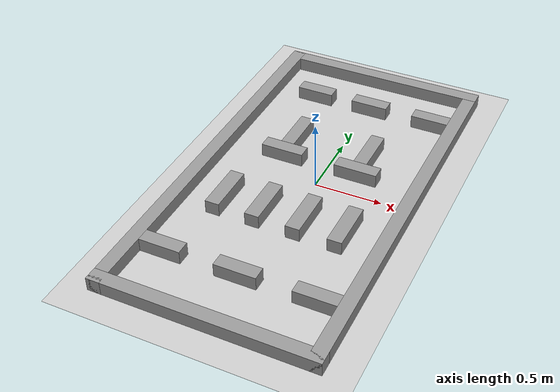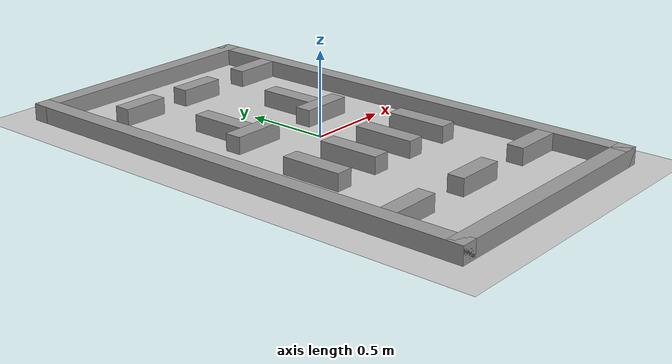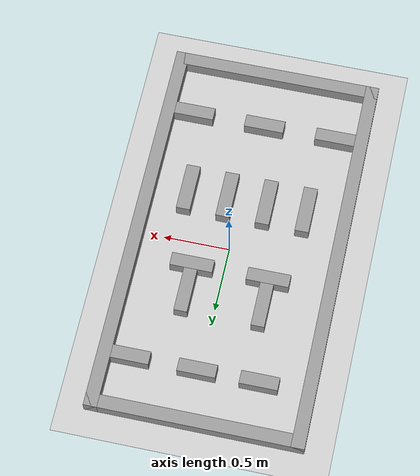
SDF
<?xml version='1.0' encoding='UTF-8'?>
<sdf version="1.7">
  <world name="default">
    <light name="sun" type="directional">
      <cast_shadows>1</cast_shadows>
      <pose>0 0 10 0 -0 0</pose>
      <diffuse>0.8 0.8 0.8 1</diffuse>
      <specular>0.2 0.2 0.2 1</specular>
      <attenuation>
        <range>1000</range>
        <constant>0.9</constant>
        <linear>0.01</linear>
        <quadratic>0.001</quadratic>
      </attenuation>
      <direction>-0.5 0.1 -0.9</direction>
      <spot>
        <inner_angle>0</inner_angle>
        <outer_angle>0</outer_angle>
        <falloff>0</falloff>
      </spot>
    </light>
    <model name="ground_plane">
      <static>1</static>
      <link name="link">
        <collision name="collision">
          <geometry>
            <plane>
              <normal>0 0 1</normal>
              <size>100 100</size>
            </plane>
          </geometry>
          <surface>
            <contact>
              <collide_bitmask>65535</collide_bitmask>
              <ode />
            </contact>
            <friction>
              <ode>
                <mu>100</mu>
                <mu2>50</mu2>
              </ode>
              <torsional>
                <ode />
              </torsional>
            </friction>
            <bounce />
          </surface>
          <max_contacts>10</max_contacts>
        </collision>
        <visual name="visual">
          <cast_shadows>0</cast_shadows>
          <geometry>
            <plane>
              <normal>0 0 1</normal>
              <size>100 100</size>
            </plane>
          </geometry>
          <material>
            <script>
              <uri>file://media/materials/scripts/gazebo.material</uri>
              <name>Gazebo/Grey</name>
            </script>
          </material>
        </visual>
        <self_collide>0</self_collide>
        <enable_wind>0</enable_wind>
        <kinematic>0</kinematic>
      </link>
    </model>
    <gravity>0 0 -9.8</gravity>
    <magnetic_field>6e-06 2.3e-05 -4.2e-05</magnetic_field>
    <atmosphere type="adiabatic" />
    <physics type="ode">
      <max_step_size>0.001</max_step_size>
      <real_time_factor>1</real_time_factor>
      <real_time_update_rate>1000</real_time_update_rate>
    </physics>
    <scene>
      <ambient>0.4 0.4 0.4 1</ambient>
      <background>0.7 0.7 0.7 1</background>
      <shadows>1</shadows>
    </scene>
    <wind />
    <spherical_coordinates>
      <surface_model>EARTH_WGS84</surface_model>
      <latitude_deg>0</latitude_deg>
      <longitude_deg>0</longitude_deg>
      <elevation>0</elevation>
      <heading_deg>0</heading_deg>
    </spherical_coordinates>
    <model name="maze">
      <pose>-0.05 -0.05 0 0 -0 0</pose>
      <link name="Wall_4">
        <collision name="Wall_4_Collision">
          <geometry>
            <box>
              <size>2.98 0.1 0.1</size>
            </box>
          </geometry>
          <pose>0 0 0.05 0 -0 0</pose>
          <max_contacts>10</max_contacts>
          <surface>
            <contact>
              <ode />
            </contact>
            <bounce />
            <friction>
              <torsional>
                <ode />
              </torsional>
              <ode />
            </friction>
          </surface>
        </collision>
        <visual name="Wall_4_Visual">
          <pose>0 0 0.05 0 -0 0</pose>
          <geometry>
            <box>
              <size>2.98 0.1 0.1</size>
            </box>
          </geometry>
          <material>
            <script>
              <uri>file://media/materials/scripts/gazebo.material</uri>
              <name>Gazebo/Grey</name>
            </script>
            <ambient>1 1 1 1</ambient>
          </material>
          <meta>
            <layer>0</layer>
          </meta>
        </visual>
        <pose>-0.75 -0 0 0 -0 -1.5708</pose>
        <self_collide>0</self_collide>
        <enable_wind>0</enable_wind>
        <kinematic>0</kinematic>
      </link>
      <link name="Wall_6">
        <collision name="Wall_6_Collision">
          <geometry>
            <box>
              <size>0.2821653333333333 0.1 0.1</size>
            </box>
          </geometry>
          <pose>0 0 0.05 0 -0 0</pose>
          <max_contacts>10</max_contacts>
          <surface>
            <contact>
              <ode />
            </contact>
            <bounce />
            <friction>
              <torsional>
                <ode />
              </torsional>
              <ode />
            </friction>
          </surface>
        </collision>
        <visual name="Wall_6_Visual">
          <pose>0 0 0.05 0 -0 0</pose>
          <geometry>
            <box>
              <size>0.2821653333333333 0.1 0.1</size>
            </box>
          </geometry>
          <material>
            <script>
              <uri>file://media/materials/scripts/gazebo.material</uri>
              <name>Gazebo/Grey</name>
            </script>
            <ambient>1 1 1 1</ambient>
          </material>
          <meta>
            <layer>0</layer>
          </meta>
        </visual>
        <pose>0.06870399999999999 1.05 0 0 -0 0</pose>
        <self_collide>0</self_collide>
        <enable_wind>0</enable_wind>
        <kinematic>0</kinematic>
      </link>
      <link name="Wall_5">
        <collision name="Wall_5_Collision">
          <geometry>
            <box>
              <size>0.2821653333333333 0.1 0.1</size>
            </box>
          </geometry>
          <pose>0 0 0.05 0 -0 0</pose>
          <max_contacts>10</max_contacts>
          <surface>
            <contact>
              <ode />
            </contact>
            <bounce />
            <friction>
              <torsional>
                <ode />
              </torsional>
              <ode />
            </friction>
          </surface>
        </collision>
        <visual name="Wall_5_Visual">
          <pose>0 0 0.05 0 -0 0</pose>
          <geometry>
            <box>
              <size>0.2821653333333333 0.1 0.1</size>
            </box>
          </geometry>
          <material>
            <script>
              <uri>file://media/materials/scripts/gazebo.material</uri>
              <name>Gazebo/Grey</name>
            </script>
            <ambient>1 1 1 1</ambient>
          </material>
          <meta>
            <layer>0</layer>
          </meta>
        </visual>
        <pose>0.5589173333333333 1.05 0 0 -0 0</pose>
        <self_collide>0</self_collide>
        <enable_wind>0</enable_wind>
        <kinematic>0</kinematic>
      </link>
      <link name="Wall_1">
        <collision name="Wall_1_Collision">
          <geometry>
            <box>
              <size>1.6 0.1 0.1</size>
            </box>
          </geometry>
          <pose>0 0 0.05 0 -0 0</pose>
          <max_contacts>10</max_contacts>
          <surface>
            <contact>
              <ode />
            </contact>
            <bounce />
            <friction>
              <torsional>
                <ode />
              </torsional>
              <ode />
            </friction>
          </surface>
        </collision>
        <visual name="Wall_1_Visual">
          <pose>0 0 0.05 0 -0 0</pose>
          <geometry>
            <box>
              <size>1.6 0.1 0.1</size>
            </box>
          </geometry>
          <material>
            <script>
              <uri>file://media/materials/scripts/gazebo.material</uri>
              <name>Gazebo/Grey</name>
            </script>
            <ambient>1 1 1 1</ambient>
          </material>
          <meta>
            <layer>0</layer>
          </meta>
        </visual>
        <pose>0 1.44 0 0 -0 0</pose>
        <self_collide>0</self_collide>
        <enable_wind>0</enable_wind>
        <kinematic>0</kinematic>
      </link>
      <link name="Wall_11">
        <collision name="Wall_11_Collision">
          <geometry>
            <box>
              <size>0.3199749999999999 0.1 0.1</size>
            </box>
          </geometry>
          <pose>0 0 0.05 0 -0 0</pose>
          <max_contacts>10</max_contacts>
          <surface>
            <contact>
              <ode />
            </contact>
            <bounce />
            <friction>
              <torsional>
                <ode />
              </torsional>
              <ode />
            </friction>
          </surface>
        </collision>
        <visual name="Wall_11_Visual">
          <pose>0 0 0.05 0 -0 0</pose>
          <geometry>
            <box>
              <size>0.3199749999999999 0.1 0.1</size>
            </box>
          </geometry>
          <material>
            <script>
              <uri>file://media/materials/scripts/gazebo.material</uri>
              <name>Gazebo/Grey</name>
            </script>
            <ambient>1 1 1 1</ambient>
          </material>
          <meta>
            <layer>0</layer>
          </meta>
        </visual>
        <pose>-0.28666249999999993 0.25 0 0 -0 0</pose>
        <self_collide>0</self_collide>
        <enable_wind>0</enable_wind>
        <kinematic>0</kinematic>
      </link>
      <link name="Wall_10">
        <collision name="Wall_10_Collision">
          <geometry>
            <box>
              <size>0.344949 0.1 0.1</size>
            </box>
          </geometry>
          <pose>0 0 0.05 0 -0 0</pose>
          <max_contacts>10</max_contacts>
          <surface>
            <contact>
              <ode />
            </contact>
            <bounce />
            <friction>
              <torsional>
                <ode />
              </torsional>
              <ode />
            </friction>
          </surface>
        </collision>
        <visual name="Wall_10_Visual">
          <pose>0 0 0.05 0 -0 0</pose>
          <geometry>
            <box>
              <size>0.344949 0.1 0.1</size>
            </box>
          </geometry>
          <material>
            <script>
              <uri>file://media/materials/scripts/gazebo.material</uri>
              <name>Gazebo/Grey</name>
            </script>
            <ambient>1 1 1 1</ambient>
          </material>
          <meta>
            <layer>0</layer>
          </meta>
        </visual>
        <pose>-0.28666249999999993 0.4724745 0 0 -0 1.5708</pose>
        <self_collide>0</self_collide>
        <enable_wind>0</enable_wind>
        <kinematic>0</kinematic>
      </link>
      <link name="Wall_9">
        <collision name="Wall_9_Collision">
          <geometry>
            <box>
              <size>0.3199749999999999 0.1 0.1</size>
            </box>
          </geometry>
          <pose>0 0 0.05 0 -0 0</pose>
          <max_contacts>10</max_contacts>
          <surface>
            <contact>
              <ode />
            </contact>
            <bounce />
            <friction>
              <torsional>
                <ode />
              </torsional>
              <ode />
            </friction>
          </surface>
        </collision>
        <visual name="Wall_9_Visual">
          <pose>0 0 0.05 0 -0 0</pose>
          <geometry>
            <box>
              <size>0.3199749999999999 0.1 0.1</size>
            </box>
          </geometry>
          <material>
            <script>
              <uri>file://media/materials/scripts/gazebo.material</uri>
              <name>Gazebo/Grey</name>
            </script>
            <ambient>1 1 1 1</ambient>
          </material>
          <meta>
            <layer>0</layer>
          </meta>
        </visual>
        <pose>0.28666249999999993 0.25 0 0 -0 0</pose>
        <self_collide>0</self_collide>
        <enable_wind>0</enable_wind>
        <kinematic>0</kinematic>
      </link>
      <link name="Wall_8">
        <collision name="Wall_8_Collision">
          <geometry>
            <box>
              <size>0.344949 0.1 0.1</size>
            </box>
          </geometry>
          <pose>0 0 0.05 0 -0 0</pose>
          <max_contacts>10</max_contacts>
          <surface>
            <contact>
              <ode />
            </contact>
            <bounce />
            <friction>
              <torsional>
                <ode />
              </torsional>
              <ode />
            </friction>
          </surface>
        </collision>
        <visual name="Wall_8_Visual">
          <pose>0 0 0.05 0 -0 0</pose>
          <geometry>
            <box>
              <size>0.344949 0.1 0.1</size>
            </box>
          </geometry>
          <material>
            <script>
              <uri>file://media/materials/scripts/gazebo.material</uri>
              <name>Gazebo/Grey</name>
            </script>
            <ambient>1 1 1 1</ambient>
          </material>
          <meta>
            <layer>0</layer>
          </meta>
        </visual>
        <pose>0.28666249999999993 0.4724745 0 0 -0 -1.5708</pose>
        <self_collide>0</self_collide>
        <enable_wind>0</enable_wind>
        <kinematic>0</kinematic>
      </link>
      <link name="Wall_15">
        <collision name="Wall_15_Collision">
          <geometry>
            <box>
              <size>0.368004 0.10516874999999998 0.1</size>
            </box>
          </geometry>
          <pose>0 0 0.05 0 -0 0</pose>
          <max_contacts>10</max_contacts>
          <surface>
            <contact>
              <ode />
            </contact>
            <bounce />
            <friction>
              <torsional>
                <ode />
              </torsional>
              <ode />
            </friction>
          </surface>
        </collision>
        <visual name="Wall_15_Visual">
          <pose>0 0 0.05 0 -0 0</pose>
          <geometry>
            <box>
              <size>0.368004 0.10516874999999998 0.1</size>
            </box>
          </geometry>
          <material>
            <script>
              <uri>file://media/materials/scripts/gazebo.material</uri>
              <name>Gazebo/Grey</name>
            </script>
            <ambient>1 1 1 1</ambient>
          </material>
          <meta>
            <layer>0</layer>
          </meta>
        </visual>
        <pose>-0.451550625 -0.35 0 0 -0 -1.5708</pose>
        <self_collide>0</self_collide>
        <enable_wind>0</enable_wind>
        <kinematic>0</kinematic>
      </link>
      <link name="Wall_14">
        <collision name="Wall_14_Collision">
          <geometry>
            <box>
              <size>0.368004 0.10516874999999998 0.1</size>
            </box>
          </geometry>
          <pose>0 0 0.05 0 -0 0</pose>
          <max_contacts>10</max_contacts>
          <surface>
            <contact>
              <ode />
            </contact>
            <bounce />
            <friction>
              <torsional>
                <ode />
              </torsional>
              <ode />
            </friction>
          </surface>
        </collision>
        <visual name="Wall_14_Visual">
          <pose>0 0 0.05 0 -0 0</pose>
          <geometry>
            <box>
              <size>0.368004 0.10516874999999998 0.1</size>
            </box>
          </geometry>
          <material>
            <script>
              <uri>file://media/materials/scripts/gazebo.material</uri>
              <name>Gazebo/Grey</name>
            </script>
            <ambient>1 1 1 1</ambient>
          </material>
          <meta>
            <layer>0</layer>
          </meta>
        </visual>
        <pose>-0.150516875 -0.35 0 0 -0 -1.5708</pose>
        <self_collide>0</self_collide>
        <enable_wind>0</enable_wind>
        <kinematic>0</kinematic>
      </link>
      <link name="Wall_13">
        <collision name="Wall_13_Collision">
          <geometry>
            <box>
              <size>0.368004 0.10516874999999998 0.1</size>
            </box>
          </geometry>
          <pose>0 0 0.05 0 -0 0</pose>
          <max_contacts>10</max_contacts>
          <surface>
            <contact>
              <ode />
            </contact>
            <bounce />
            <friction>
              <torsional>
                <ode />
              </torsional>
              <ode />
            </friction>
          </surface>
        </collision>
        <visual name="Wall_13_Visual">
          <pose>0 0 0.05 0 -0 0</pose>
          <geometry>
            <box>
              <size>0.368004 0.10516874999999998 0.1</size>
            </box>
          </geometry>
          <material>
            <script>
              <uri>file://media/materials/scripts/gazebo.material</uri>
              <name>Gazebo/Grey</name>
            </script>
            <ambient>1 1 1 1</ambient>
          </material>
          <meta>
            <layer>0</layer>
          </meta>
        </visual>
        <pose>0.150516875 -0.35 0 0 -0 -1.5708</pose>
        <self_collide>0</self_collide>
        <enable_wind>0</enable_wind>
        <kinematic>0</kinematic>
      </link>
      <link name="Wall_2">
        <collision name="Wall_2_Collision">
          <geometry>
            <box>
              <size>2.98 0.1 0.1</size>
            </box>
          </geometry>
          <pose>0 0 0.05 0 -0 0</pose>
          <max_contacts>10</max_contacts>
          <surface>
            <contact>
              <ode />
            </contact>
            <bounce />
            <friction>
              <torsional>
                <ode />
              </torsional>
              <ode />
            </friction>
          </surface>
        </collision>
        <visual name="Wall_2_Visual">
          <pose>0 0 0.05 0 -0 0</pose>
          <geometry>
            <box>
              <size>2.98 0.1 0.1</size>
            </box>
          </geometry>
          <material>
            <script>
              <uri>file://media/materials/scripts/gazebo.material</uri>
              <name>Gazebo/Grey</name>
            </script>
            <ambient>1 1 1 1</ambient>
          </material>
          <meta>
            <layer>0</layer>
          </meta>
        </visual>
        <pose>0.75 -0 0 0 -0 -1.5708</pose>
        <self_collide>0</self_collide>
        <enable_wind>0</enable_wind>
        <kinematic>0</kinematic>
      </link>
      <link name="Wall_12">
        <collision name="Wall_12_Collision">
          <geometry>
            <box>
              <size>0.368004 0.10516874999999998 0.1</size>
            </box>
          </geometry>
          <pose>0 0 0.05 0 -0 0</pose>
          <max_contacts>10</max_contacts>
          <surface>
            <contact>
              <ode />
            </contact>
            <bounce />
            <friction>
              <torsional>
                <ode />
              </torsional>
              <ode />
            </friction>
          </surface>
        </collision>
        <visual name="Wall_12_Visual">
          <pose>0 0 0.05 0 -0 0</pose>
          <geometry>
            <box>
              <size>0.368004 0.10516874999999998 0.1</size>
            </box>
          </geometry>
          <material>
            <script>
              <uri>file://media/materials/scripts/gazebo.material</uri>
              <name>Gazebo/Grey</name>
            </script>
            <ambient>1 1 1 1</ambient>
          </material>
          <meta>
            <layer>0</layer>
          </meta>
        </visual>
        <pose>0.451550625 -0.35 0 0 -0 -1.5708</pose>
        <self_collide>0</self_collide>
        <enable_wind>0</enable_wind>
        <kinematic>0</kinematic>
      </link>
      <link name="Wall_18">
        <collision name="Wall_18_Collision">
          <geometry>
            <box>
              <size>0.30303399999999997 0.1 0.1</size>
            </box>
          </geometry>
          <pose>0 0 0.05 0 -0 0</pose>
          <max_contacts>10</max_contacts>
          <surface>
            <contact>
              <ode />
            </contact>
            <bounce />
            <friction>
              <torsional>
                <ode />
              </torsional>
              <ode />
            </friction>
          </surface>
        </collision>
        <visual name="Wall_18_Visual">
          <pose>0 0 0.05 0 -0 0</pose>
          <geometry>
            <box>
              <size>0.30303399999999997 0.1 0.1</size>
            </box>
          </geometry>
          <material>
            <script>
              <uri>file://media/materials/scripts/gazebo.material</uri>
              <name>Gazebo/Grey</name>
            </script>
            <ambient>1 1 1 1</ambient>
          </material>
          <meta>
            <layer>0</layer>
          </meta>
        </visual>
        <pose>-0.5484829999999999 -1 0 0 -0 0</pose>
        <self_collide>0</self_collide>
        <enable_wind>0</enable_wind>
        <kinematic>0</kinematic>
      </link>
      <link name="Wall_17">
        <collision name="Wall_17_Collision">
          <geometry>
            <box>
              <size>0.30303399999999997 0.1 0.1</size>
            </box>
          </geometry>
          <pose>0 0 0.05 0 -0 0</pose>
          <max_contacts>10</max_contacts>
          <surface>
            <contact>
              <ode />
            </contact>
            <bounce />
            <friction>
              <torsional>
                <ode />
              </torsional>
              <ode />
            </friction>
          </surface>
        </collision>
        <visual name="Wall_17_Visual">
          <pose>0 0 0.05 0 -0 0</pose>
          <geometry>
            <box>
              <size>0.30303399999999997 0.1 0.1</size>
            </box>
          </geometry>
          <material>
            <script>
              <uri>file://media/materials/scripts/gazebo.material</uri>
              <name>Gazebo/Grey</name>
            </script>
            <ambient>1 1 1 1</ambient>
          </material>
          <meta>
            <layer>0</layer>
          </meta>
        </visual>
        <pose>0 -1 0 0 -0 0</pose>
        <self_collide>0</self_collide>
        <enable_wind>0</enable_wind>
        <kinematic>0</kinematic>
      </link>
      <link name="Wall_16">
        <collision name="Wall_16_Collision">
          <geometry>
            <box>
              <size>0.30303399999999997 0.1 0.1</size>
            </box>
          </geometry>
          <pose>0 0 0.05 0 -0 0</pose>
          <max_contacts>10</max_contacts>
          <surface>
            <contact>
              <ode />
            </contact>
            <bounce />
            <friction>
              <torsional>
                <ode />
              </torsional>
              <ode />
            </friction>
          </surface>
        </collision>
        <visual name="Wall_16_Visual">
          <pose>0 0 0.05 0 -0 0</pose>
          <geometry>
            <box>
              <size>0.30303399999999997 0.1 0.1</size>
            </box>
          </geometry>
          <material>
            <script>
              <uri>file://media/materials/scripts/gazebo.material</uri>
              <name>Gazebo/Grey</name>
            </script>
            <ambient>1 1 1 1</ambient>
          </material>
          <meta>
            <layer>0</layer>
          </meta>
        </visual>
        <pose>0.5484829999999999 -1 0 0 -0 0</pose>
        <self_collide>0</self_collide>
        <enable_wind>0</enable_wind>
        <kinematic>0</kinematic>
      </link>
      <link name="Wall_3">
        <collision name="Wall_3_Collision">
          <geometry>
            <box>
              <size>1.6 0.1 0.1</size>
            </box>
          </geometry>
          <pose>0 0 0.05 0 -0 0</pose>
          <max_contacts>10</max_contacts>
          <surface>
            <contact>
              <ode />
            </contact>
            <bounce />
            <friction>
              <torsional>
                <ode />
              </torsional>
              <ode />
            </friction>
          </surface>
        </collision>
        <visual name="Wall_3_Visual">
          <pose>0 0 0.05 0 -0 0</pose>
          <geometry>
            <box>
              <size>1.6 0.1 0.1</size>
            </box>
          </geometry>
          <material>
            <script>
              <uri>file://media/materials/scripts/gazebo.material</uri>
              <name>Gazebo/Grey</name>
            </script>
            <ambient>1 1 1 1</ambient>
          </material>
          <meta>
            <layer>0</layer>
          </meta>
        </visual>
        <pose>0 -1.44 0 0 -0 0</pose>
        <self_collide>0</self_collide>
        <enable_wind>0</enable_wind>
        <kinematic>0</kinematic>
      </link>
      <link name="Wall_7">
        <collision name="Wall_7_Collision">
          <geometry>
            <box>
              <size>0.2821653333333333 0.1 0.1</size>
            </box>
          </geometry>
          <pose>0 0 0.05 0 -0 0</pose>
          <max_contacts>10</max_contacts>
          <surface>
            <contact>
              <ode />
            </contact>
            <bounce />
            <friction>
              <torsional>
                <ode />
              </torsional>
              <ode />
            </friction>
          </surface>
        </collision>
        <visual name="Wall_7_Visual">
          <pose>0 0 0.05 0 -0 0</pose>
          <geometry>
            <box>
              <size>0.2821653333333333 0.1 0.1</size>
            </box>
          </geometry>
          <material>
            <script>
              <uri>file://media/materials/scripts/gazebo.material</uri>
              <name>Gazebo/Grey</name>
            </script>
            <ambient>1 1 1 1</ambient>
          </material>
          <meta>
            <layer>0</layer>
          </meta>
        </visual>
        <pose>-0.3861893333333334 1.05 0 0 -0 0</pose>
        <self_collide>0</self_collide>
        <enable_wind>0</enable_wind>
        <kinematic>0</kinematic>
      </link>
      <static>1</static>
    </model>
    <gui fullscreen="0">
      <camera name="user_camera">
        <pose>0 0 5 0 1.57 0</pose>
        <view_controller>orbit</view_controller>
        <projection_type>perspective</projection_type>
      </camera>
    </gui>
  </world>
</sdf>
